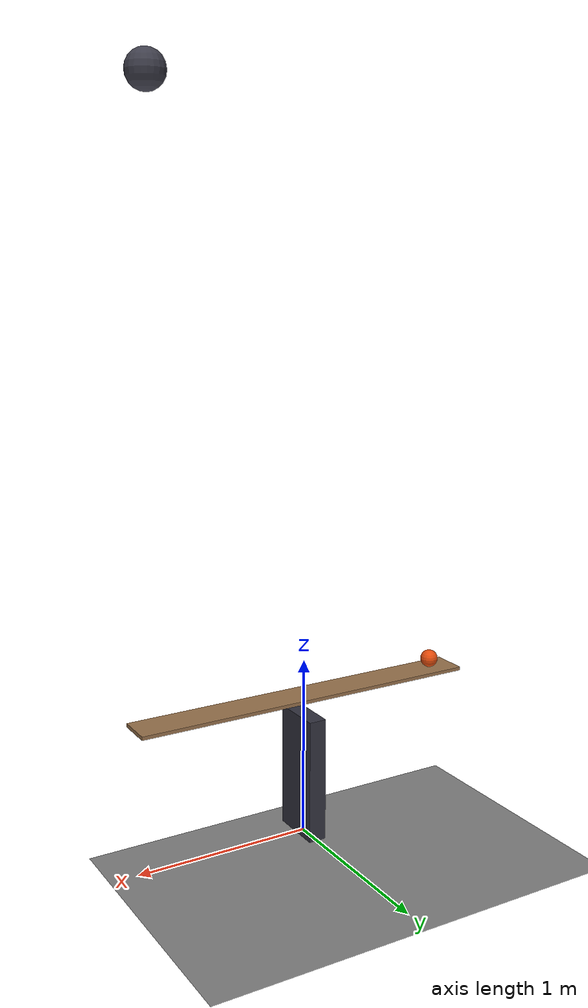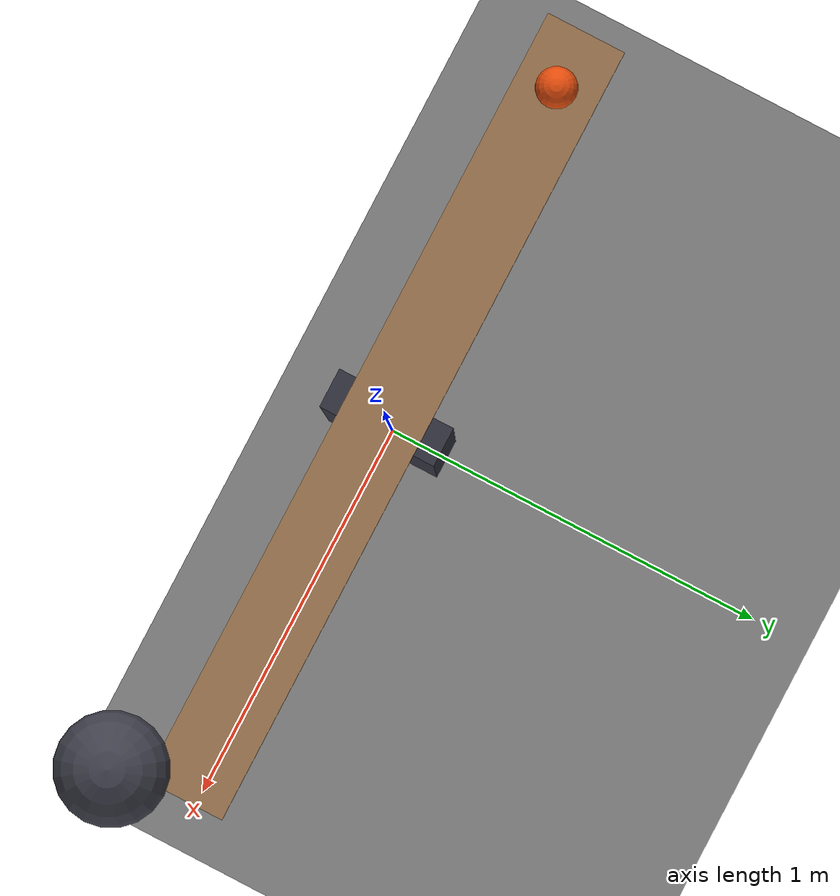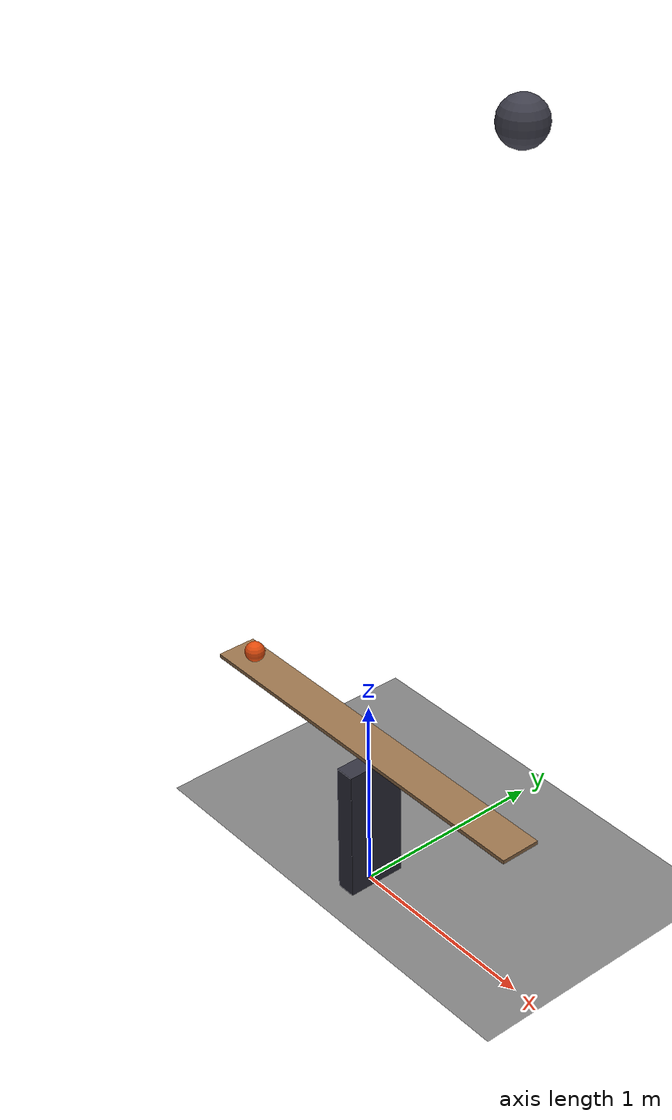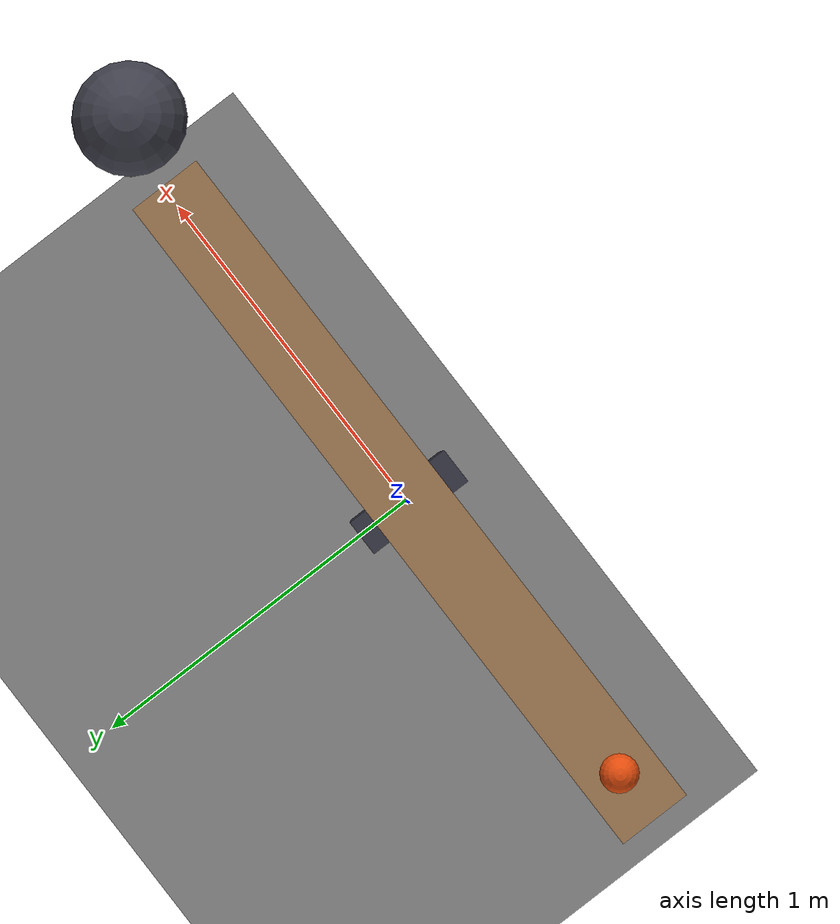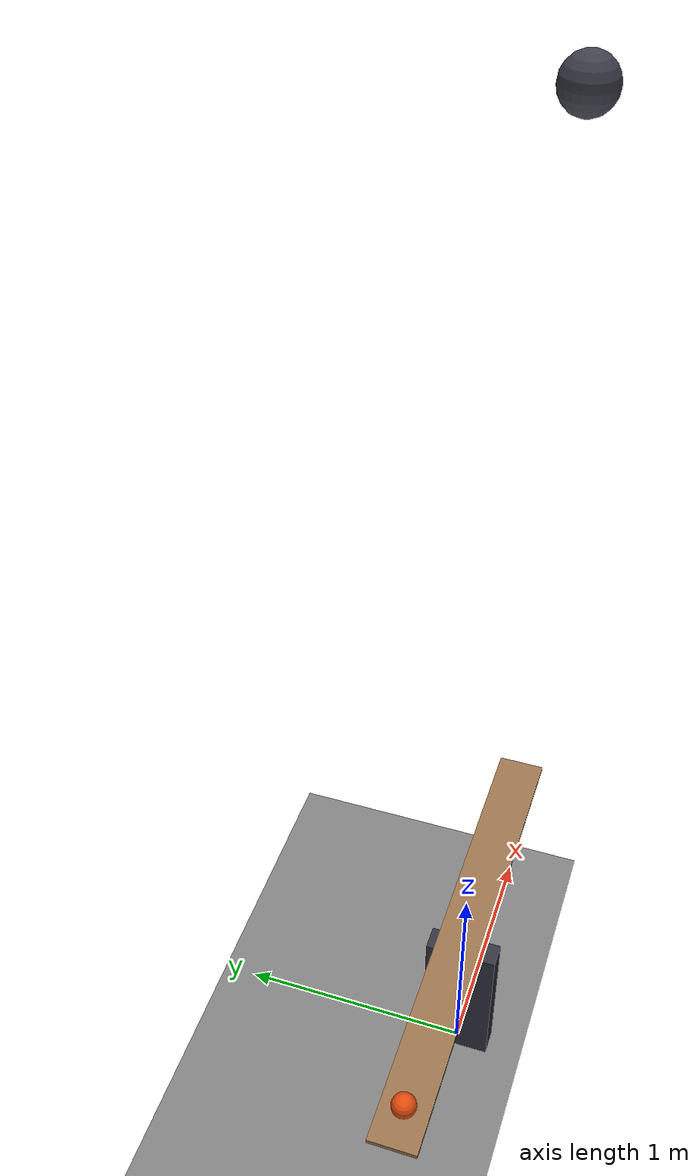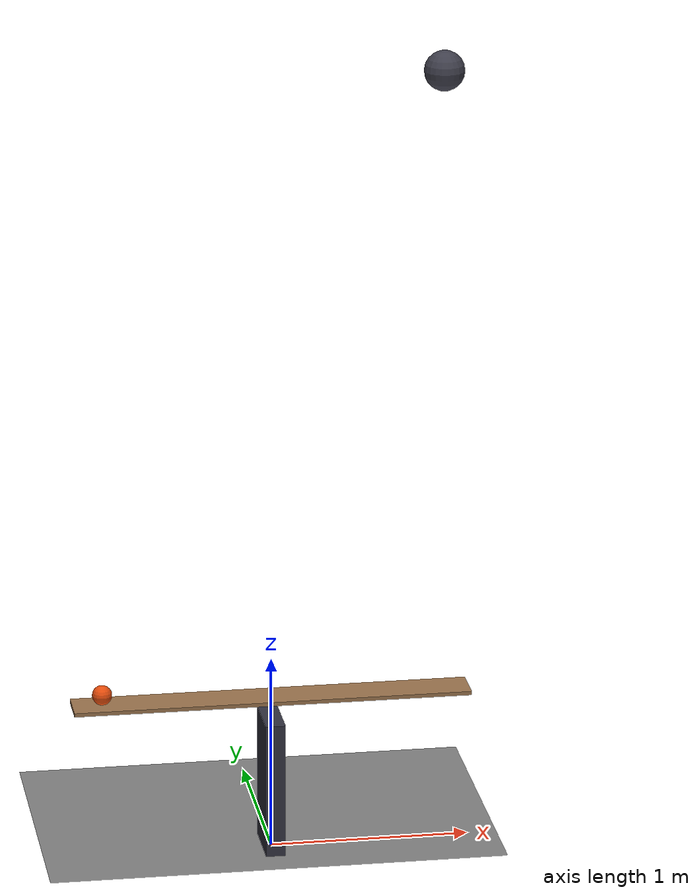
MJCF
<mujoco model="falling_weight_launches_a_seesaw_ball">
  <compiler angle="radian"/>
  <option timestep="0.002"/>
  <worldbody>
    <geom name="floor" type="plane" size="6 6 0.1" friction="0.8 0.005 0.002"/>
    <body name="stand">
      <geom name="stand" type="box" pos="0 0 0.35" size="0.05 0.15 0.35" rgba="0.2 0.2 0.25 1"/>
    </body>
    <body name="seesaw" pos="0 0 0.8">
      <joint name="seesaw_hinge" type="hinge" pos="0 0 0" axis="0 1 0" limited="true" range="0 0.785398" damping="0.01"/>
      <geom name="seesaw" type="box" pos="0 0 0" size="1 0.1 0.01" mass="1" friction="0.4 0.005 0.002" solref="0.01 1" rgba="0.6 0.45 0.3 1"/>
    </body>
    <body name="ball" pos="-0.85 0 0.86">
      <freejoint/>
      <geom name="ball" type="sphere" pos="0 0 0" size="0.05" mass="0.1" condim="6" friction="0.4 0.005 0.002" solref="0.01 1" rgba="0.9 0.3 0.05 1"/>
    </body>
    <body name="weight" pos="0.85 0 4">
      <freejoint/>
      <geom name="weight" type="sphere" pos="0 0 0" size="0.1" mass="1" condim="6" friction="0.4 0.005 0.002" solref="0.01 1" rgba="0.25 0.25 0.3 1"/>
    </body>
  </worldbody>
  <keyframe>
    <key name="start" qpos="0 -0.85 0 0.86 1 0 0 0 0.85 0 4 1 0 0 0" qvel="0 0 0 0 0 0 0 0 0 0 0 0 0"/>
  </keyframe>
</mujoco>
